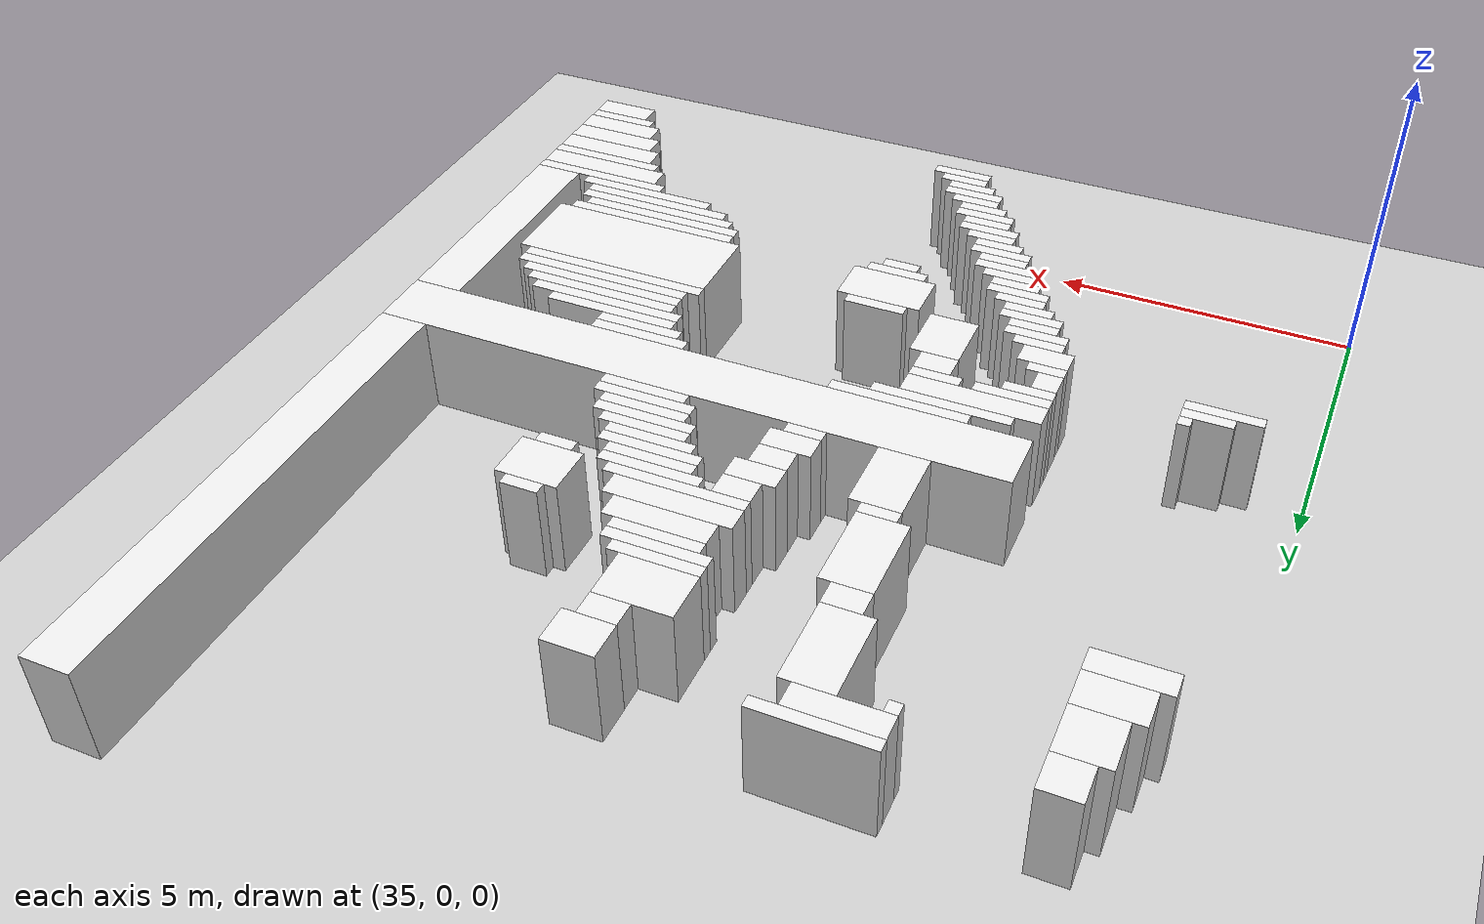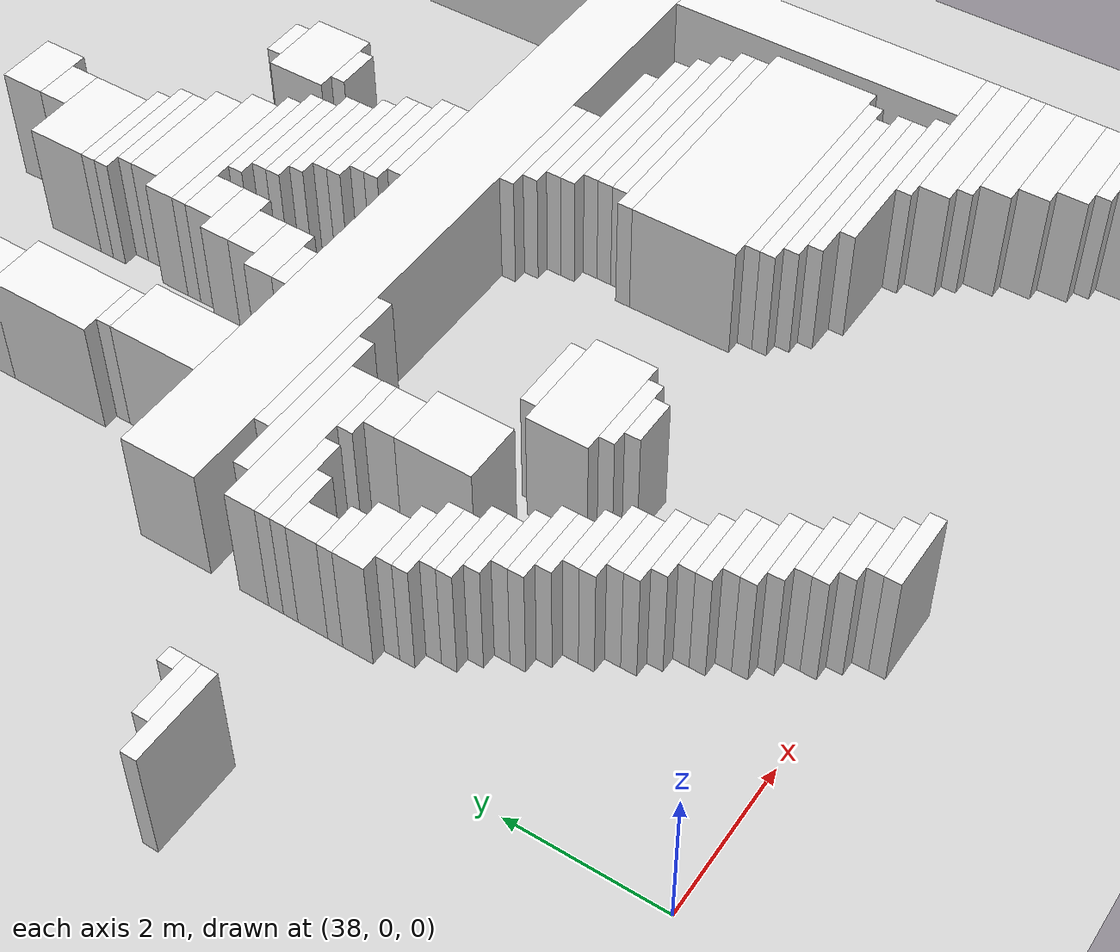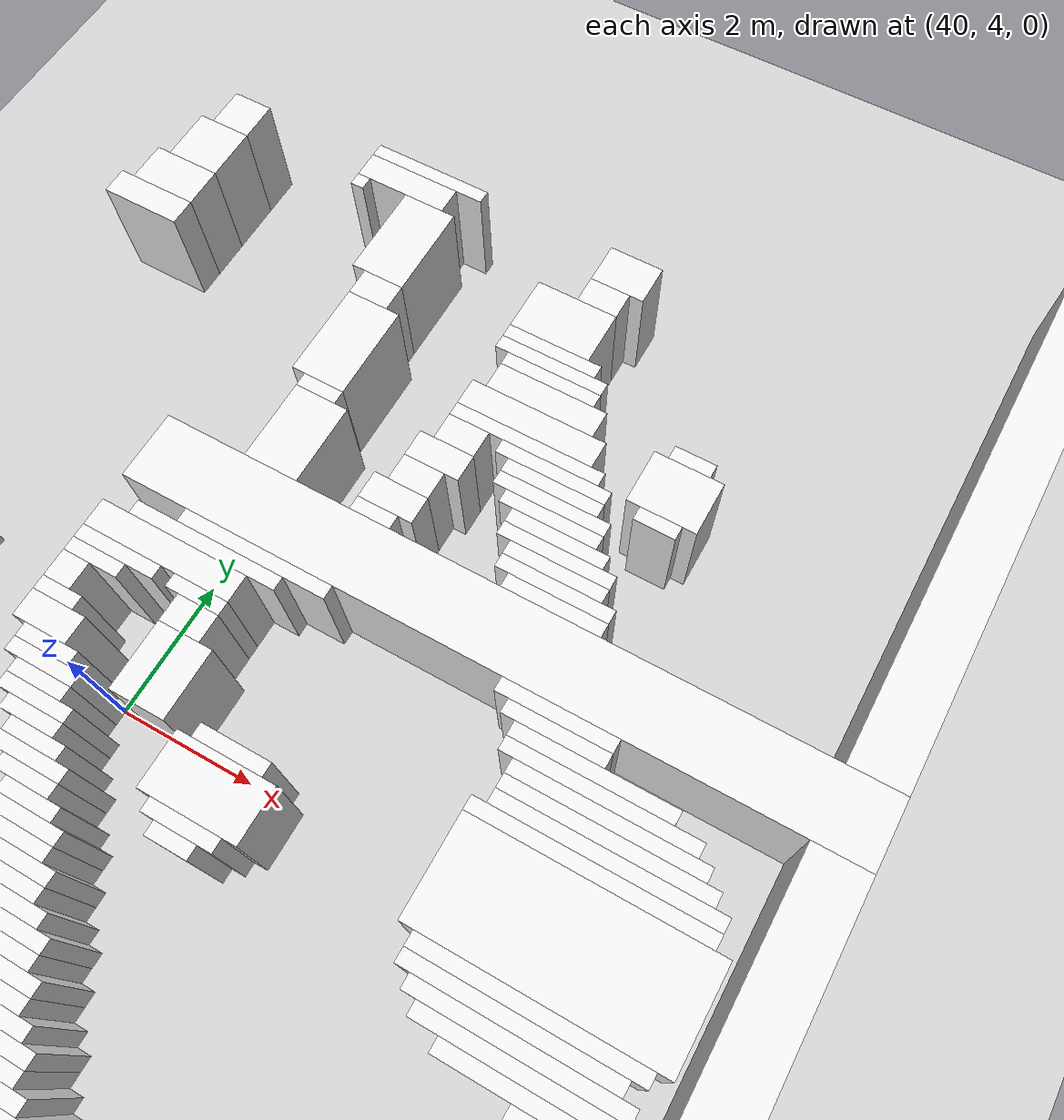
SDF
<sdf version="1.7">
 <world name="default">
  <model name="ground_plane">
   <static>1</static>
   <link name="link">
    <collision name="collision">
     <geometry><plane><normal>0 0 1</normal><size>120 120</size></plane></geometry>
    </collision>
    <visual name="visual">
     <geometry><plane><normal>0 0 1</normal><size>120 120</size></plane></geometry>
     <material>
      <script><uri>file://media/materials/scripts/gazebo.material</uri><name>Gazebo/Grey</name></script>
     </material>
    </visual>
   </link>
  </model>
  <model name="random_complex_01_model">
   <static>1</static>
   <link name="obs_1289">
    <pose>39.7000 12.5000 0.8000 0 0 0</pose>
    <collision name="obs_1289_col"><geometry><box><size>1.8000 0.2000 1.6000</size></box></geometry></collision>
    <visual name="obs_1289_vis">
     <geometry><box><size>1.8000 0.2000 1.6000</size></box></geometry>
     <material>
      <script><uri>file://media/materials/scripts/gazebo.material</uri><name>Gazebo/White</name></script>
     </material>
    </visual>
   </link>
   <link name="obs_1299">
    <pose>43.0000 12.3000 0.8000 0 0 0</pose>
    <collision name="obs_1299_col"><geometry><box><size>0.8000 0.6000 1.6000</size></box></geometry></collision>
    <visual name="obs_1299_vis">
     <geometry><box><size>0.8000 0.6000 1.6000</size></box></geometry>
     <material>
      <script><uri>file://media/materials/scripts/gazebo.material</uri><name>Gazebo/White</name></script>
     </material>
    </visual>
   </link>
   <link name="obs_1301">
    <pose>39.5000 12.2000 0.8000 0 0 0</pose>
    <collision name="obs_1301_col"><geometry><box><size>1.4000 0.4000 1.6000</size></box></geometry></collision>
    <visual name="obs_1301_vis">
     <geometry><box><size>1.4000 0.4000 1.6000</size></box></geometry>
     <material>
      <script><uri>file://media/materials/scripts/gazebo.material</uri><name>Gazebo/White</name></script>
     </material>
    </visual>
   </link>
   <link name="obs_1307">
    <pose>36.7000 12.1000 0.8000 0 0 0</pose>
    <collision name="obs_1307_col"><geometry><box><size>0.6000 0.6000 1.6000</size></box></geometry></collision>
    <visual name="obs_1307_vis">
     <geometry><box><size>0.6000 0.6000 1.6000</size></box></geometry>
     <material>
      <script><uri>file://media/materials/scripts/gazebo.material</uri><name>Gazebo/White</name></script>
     </material>
    </visual>
   </link>
   <link name="obs_1315">
    <pose>38.9000 11.9000 0.8000 0 0 0</pose>
    <collision name="obs_1315_col"><geometry><box><size>0.2000 0.2000 1.6000</size></box></geometry></collision>
    <visual name="obs_1315_vis">
     <geometry><box><size>0.2000 0.2000 1.6000</size></box></geometry>
     <material>
      <script><uri>file://media/materials/scripts/gazebo.material</uri><name>Gazebo/White</name></script>
     </material>
    </visual>
   </link>
   <link name="obs_1316">
    <pose>42.9000 11.8000 0.8000 0 0 0</pose>
    <collision name="obs_1316_col"><geometry><box><size>0.6000 0.4000 1.6000</size></box></geometry></collision>
    <visual name="obs_1316_vis">
     <geometry><box><size>0.6000 0.4000 1.6000</size></box></geometry>
     <material>
      <script><uri>file://media/materials/scripts/gazebo.material</uri><name>Gazebo/White</name></script>
     </material>
    </visual>
   </link>
   <link name="obs_1333">
    <pose>36.6000 11.4000 0.8000 0 0 0</pose>
    <collision name="obs_1333_col"><geometry><box><size>0.8000 0.8000 1.6000</size></box></geometry></collision>
    <visual name="obs_1333_vis">
     <geometry><box><size>0.8000 0.8000 1.6000</size></box></geometry>
     <material>
      <script><uri>file://media/materials/scripts/gazebo.material</uri><name>Gazebo/White</name></script>
     </material>
    </visual>
   </link>
   <link name="obs_1338">
    <pose>42.6000 11.2000 0.8000 0 0 0</pose>
    <collision name="obs_1338_col"><geometry><box><size>1.2000 0.8000 1.6000</size></box></geometry></collision>
    <visual name="obs_1338_vis">
     <geometry><box><size>1.2000 0.8000 1.6000</size></box></geometry>
     <material>
      <script><uri>file://media/materials/scripts/gazebo.material</uri><name>Gazebo/White</name></script>
     </material>
    </visual>
   </link>
   <link name="obs_1344">
    <pose>40.0000 11.3000 0.8000 0 0 0</pose>
    <collision name="obs_1344_col"><geometry><box><size>0.8000 1.4000 1.6000</size></box></geometry></collision>
    <visual name="obs_1344_vis">
     <geometry><box><size>0.8000 1.4000 1.6000</size></box></geometry>
     <material>
      <script><uri>file://media/materials/scripts/gazebo.material</uri><name>Gazebo/White</name></script>
     </material>
    </visual>
   </link>
   <link name="obs_1350">
    <pose>42.7000 10.7000 0.8000 0 0 0</pose>
    <collision name="obs_1350_col"><geometry><box><size>1.4000 0.2000 1.6000</size></box></geometry></collision>
    <visual name="obs_1350_vis">
     <geometry><box><size>1.4000 0.2000 1.6000</size></box></geometry>
     <material>
      <script><uri>file://media/materials/scripts/gazebo.material</uri><name>Gazebo/White</name></script>
     </material>
    </visual>
   </link>
   <link name="obs_1352">
    <pose>36.5000 10.7000 0.8000 0 0 0</pose>
    <collision name="obs_1352_col"><geometry><box><size>1.0000 0.6000 1.6000</size></box></geometry></collision>
    <visual name="obs_1352_vis">
     <geometry><box><size>1.0000 0.6000 1.6000</size></box></geometry>
     <material>
      <script><uri>file://media/materials/scripts/gazebo.material</uri><name>Gazebo/White</name></script>
     </material>
    </visual>
   </link>
   <link name="obs_1354">
    <pose>42.8000 10.5000 0.8000 0 0 0</pose>
    <collision name="obs_1354_col"><geometry><box><size>1.6000 0.2000 1.6000</size></box></geometry></collision>
    <visual name="obs_1354_vis">
     <geometry><box><size>1.6000 0.2000 1.6000</size></box></geometry>
     <material>
      <script><uri>file://media/materials/scripts/gazebo.material</uri><name>Gazebo/White</name></script>
     </material>
    </visual>
   </link>
   <link name="obs_1359">
    <pose>40.1000 10.4000 0.8000 0 0 0</pose>
    <collision name="obs_1359_col"><geometry><box><size>0.6000 0.4000 1.6000</size></box></geometry></collision>
    <visual name="obs_1359_vis">
     <geometry><box><size>0.6000 0.4000 1.6000</size></box></geometry>
     <material>
      <script><uri>file://media/materials/scripts/gazebo.material</uri><name>Gazebo/White</name></script>
     </material>
    </visual>
   </link>
   <link name="obs_1361">
    <pose>42.9000 10.3000 0.8000 0 0 0</pose>
    <collision name="obs_1361_col"><geometry><box><size>1.4000 0.2000 1.6000</size></box></geometry></collision>
    <visual name="obs_1361_vis">
     <geometry><box><size>1.4000 0.2000 1.6000</size></box></geometry>
     <material>
      <script><uri>file://media/materials/scripts/gazebo.material</uri><name>Gazebo/White</name></script>
     </material>
    </visual>
   </link>
   <link name="obs_1365">
    <pose>36.4000 10.2000 0.8000 0 0 0</pose>
    <collision name="obs_1365_col"><geometry><box><size>1.2000 0.4000 1.6000</size></box></geometry></collision>
    <visual name="obs_1365_vis">
     <geometry><box><size>1.2000 0.4000 1.6000</size></box></geometry>
     <material>
      <script><uri>file://media/materials/scripts/gazebo.material</uri><name>Gazebo/White</name></script>
     </material>
    </visual>
   </link>
   <link name="obs_1370">
    <pose>45.1000 10.1000 0.8000 0 0 0</pose>
    <collision name="obs_1370_col"><geometry><box><size>0.6000 0.2000 1.6000</size></box></geometry></collision>
    <visual name="obs_1370_vis">
     <geometry><box><size>0.6000 0.2000 1.6000</size></box></geometry>
     <material>
      <script><uri>file://media/materials/scripts/gazebo.material</uri><name>Gazebo/White</name></script>
     </material>
    </visual>
   </link>
   <link name="obs_1372">
    <pose>43.0000 10.0000 0.8000 0 0 0</pose>
    <collision name="obs_1372_col"><geometry><box><size>1.6000 0.4000 1.6000</size></box></geometry></collision>
    <visual name="obs_1372_vis">
     <geometry><box><size>1.6000 0.4000 1.6000</size></box></geometry>
     <material>
      <script><uri>file://media/materials/scripts/gazebo.material</uri><name>Gazebo/White</name></script>
     </material>
    </visual>
   </link>
   <link name="obs_1388">
    <pose>43.0000 9.6000 0.8000 0 0 0</pose>
    <collision name="obs_1388_col"><geometry><box><size>2.0000 0.4000 1.6000</size></box></geometry></collision>
    <visual name="obs_1388_vis">
     <geometry><box><size>2.0000 0.4000 1.6000</size></box></geometry>
     <material>
      <script><uri>file://media/materials/scripts/gazebo.material</uri><name>Gazebo/White</name></script>
     </material>
    </visual>
   </link>
   <link name="obs_1394">
    <pose>45.1000 9.6000 0.8000 0 0 0</pose>
    <collision name="obs_1394_col"><geometry><box><size>1.0000 0.8000 1.6000</size></box></geometry></collision>
    <visual name="obs_1394_vis">
     <geometry><box><size>1.0000 0.8000 1.6000</size></box></geometry>
     <material>
      <script><uri>file://media/materials/scripts/gazebo.material</uri><name>Gazebo/White</name></script>
     </material>
    </visual>
   </link>
   <link name="obs_1399">
    <pose>43.1000 9.3000 0.8000 0 0 0</pose>
    <collision name="obs_1399_col"><geometry><box><size>2.2000 0.2000 1.6000</size></box></geometry></collision>
    <visual name="obs_1399_vis">
     <geometry><box><size>2.2000 0.2000 1.6000</size></box></geometry>
     <material>
      <script><uri>file://media/materials/scripts/gazebo.material</uri><name>Gazebo/White</name></script>
     </material>
    </visual>
   </link>
   <link name="obs_1406">
    <pose>43.6000 9.1000 0.8000 0 0 0</pose>
    <collision name="obs_1406_col"><geometry><box><size>1.6000 0.2000 1.6000</size></box></geometry></collision>
    <visual name="obs_1406_vis">
     <geometry><box><size>1.6000 0.2000 1.6000</size></box></geometry>
     <material>
      <script><uri>file://media/materials/scripts/gazebo.material</uri><name>Gazebo/White</name></script>
     </material>
    </visual>
   </link>
   <link name="obs_1407">
    <pose>45.1000 9.1000 0.8000 0 0 0</pose>
    <collision name="obs_1407_col"><geometry><box><size>0.6000 0.2000 1.6000</size></box></geometry></collision>
    <visual name="obs_1407_vis">
     <geometry><box><size>0.6000 0.2000 1.6000</size></box></geometry>
     <material>
      <script><uri>file://media/materials/scripts/gazebo.material</uri><name>Gazebo/White</name></script>
     </material>
    </visual>
   </link>
   <link name="obs_1409">
    <pose>40.2000 9.5000 0.8000 0 0 0</pose>
    <collision name="obs_1409_col"><geometry><box><size>0.8000 1.4000 1.6000</size></box></geometry></collision>
    <visual name="obs_1409_vis">
     <geometry><box><size>0.8000 1.4000 1.6000</size></box></geometry>
     <material>
      <script><uri>file://media/materials/scripts/gazebo.material</uri><name>Gazebo/White</name></script>
     </material>
    </visual>
   </link>
   <link name="obs_1412">
    <pose>42.3000 9.0000 0.8000 0 0 0</pose>
    <collision name="obs_1412_col"><geometry><box><size>0.6000 0.4000 1.6000</size></box></geometry></collision>
    <visual name="obs_1412_vis">
     <geometry><box><size>0.6000 0.4000 1.6000</size></box></geometry>
     <material>
      <script><uri>file://media/materials/scripts/gazebo.material</uri><name>Gazebo/White</name></script>
     </material>
    </visual>
   </link>
   <link name="obs_1420">
    <pose>43.7000 8.9000 0.8000 0 0 0</pose>
    <collision name="obs_1420_col"><geometry><box><size>1.4000 0.2000 1.6000</size></box></geometry></collision>
    <visual name="obs_1420_vis">
     <geometry><box><size>1.4000 0.2000 1.6000</size></box></geometry>
     <material>
      <script><uri>file://media/materials/scripts/gazebo.material</uri><name>Gazebo/White</name></script>
     </material>
    </visual>
   </link>
   <link name="obs_1426">
    <pose>40.3000 8.7000 0.8000 0 0 0</pose>
    <collision name="obs_1426_col"><geometry><box><size>0.6000 0.2000 1.6000</size></box></geometry></collision>
    <visual name="obs_1426_vis">
     <geometry><box><size>0.6000 0.2000 1.6000</size></box></geometry>
     <material>
      <script><uri>file://media/materials/scripts/gazebo.material</uri><name>Gazebo/White</name></script>
     </material>
    </visual>
   </link>
   <link name="obs_1427">
    <pose>43.8000 8.7000 0.8000 0 0 0</pose>
    <collision name="obs_1427_col"><geometry><box><size>1.6000 0.2000 1.6000</size></box></geometry></collision>
    <visual name="obs_1427_vis">
     <geometry><box><size>1.6000 0.2000 1.6000</size></box></geometry>
     <material>
      <script><uri>file://media/materials/scripts/gazebo.material</uri><name>Gazebo/White</name></script>
     </material>
    </visual>
   </link>
   <link name="obs_1428">
    <pose>42.2000 8.6000 0.8000 0 0 0</pose>
    <collision name="obs_1428_col"><geometry><box><size>0.8000 0.4000 1.6000</size></box></geometry></collision>
    <visual name="obs_1428_vis">
     <geometry><box><size>0.8000 0.4000 1.6000</size></box></geometry>
     <material>
      <script><uri>file://media/materials/scripts/gazebo.material</uri><name>Gazebo/White</name></script>
     </material>
    </visual>
   </link>
   <link name="obs_1434">
    <pose>43.9000 8.5000 0.8000 0 0 0</pose>
    <collision name="obs_1434_col"><geometry><box><size>1.4000 0.2000 1.6000</size></box></geometry></collision>
    <visual name="obs_1434_vis">
     <geometry><box><size>1.4000 0.2000 1.6000</size></box></geometry>
     <material>
      <script><uri>file://media/materials/scripts/gazebo.material</uri><name>Gazebo/White</name></script>
     </material>
    </visual>
   </link>
   <link name="obs_1442">
    <pose>44.1000 8.3000 0.8000 0 0 0</pose>
    <collision name="obs_1442_col"><geometry><box><size>1.4000 0.2000 1.6000</size></box></geometry></collision>
    <visual name="obs_1442_vis">
     <geometry><box><size>1.4000 0.2000 1.6000</size></box></geometry>
     <material>
      <script><uri>file://media/materials/scripts/gazebo.material</uri><name>Gazebo/White</name></script>
     </material>
    </visual>
   </link>
   <link name="obs_1445">
    <pose>42.1000 8.2000 0.8000 0 0 0</pose>
    <collision name="obs_1445_col"><geometry><box><size>0.6000 0.4000 1.6000</size></box></geometry></collision>
    <visual name="obs_1445_vis">
     <geometry><box><size>0.6000 0.4000 1.6000</size></box></geometry>
     <material>
      <script><uri>file://media/materials/scripts/gazebo.material</uri><name>Gazebo/White</name></script>
     </material>
    </visual>
   </link>
   <link name="obs_1451">
    <pose>44.2000 8.1000 0.8000 0 0 0</pose>
    <collision name="obs_1451_col"><geometry><box><size>1.6000 0.2000 1.6000</size></box></geometry></collision>
    <visual name="obs_1451_vis">
     <geometry><box><size>1.6000 0.2000 1.6000</size></box></geometry>
     <material>
      <script><uri>file://media/materials/scripts/gazebo.material</uri><name>Gazebo/White</name></script>
     </material>
    </visual>
   </link>
   <link name="obs_1457">
    <pose>44.3000 7.9000 0.8000 0 0 0</pose>
    <collision name="obs_1457_col"><geometry><box><size>1.4000 0.2000 1.6000</size></box></geometry></collision>
    <visual name="obs_1457_vis">
     <geometry><box><size>1.4000 0.2000 1.6000</size></box></geometry>
     <material>
      <script><uri>file://media/materials/scripts/gazebo.material</uri><name>Gazebo/White</name></script>
     </material>
    </visual>
   </link>
   <link name="obs_1461">
    <pose>42.0000 7.8000 0.8000 0 0 0</pose>
    <collision name="obs_1461_col"><geometry><box><size>0.8000 0.4000 1.6000</size></box></geometry></collision>
    <visual name="obs_1461_vis">
     <geometry><box><size>0.8000 0.4000 1.6000</size></box></geometry>
     <material>
      <script><uri>file://media/materials/scripts/gazebo.material</uri><name>Gazebo/White</name></script>
     </material>
    </visual>
   </link>
   <link name="obs_1465">
    <pose>44.4000 7.7000 0.8000 0 0 0</pose>
    <collision name="obs_1465_col"><geometry><box><size>1.6000 0.2000 1.6000</size></box></geometry></collision>
    <visual name="obs_1465_vis">
     <geometry><box><size>1.6000 0.2000 1.6000</size></box></geometry>
     <material>
      <script><uri>file://media/materials/scripts/gazebo.material</uri><name>Gazebo/White</name></script>
     </material>
    </visual>
   </link>
   <link name="obs_1466">
    <pose>48.8000 11.4000 0.8000 0 0 0</pose>
    <collision name="obs_1466_col"><geometry><box><size>0.8000 8.0000 1.6000</size></box></geometry></collision>
    <visual name="obs_1466_vis">
     <geometry><box><size>0.8000 8.0000 1.6000</size></box></geometry>
     <material>
      <script><uri>file://media/materials/scripts/gazebo.material</uri><name>Gazebo/White</name></script>
     </material>
    </visual>
   </link>
   <link name="obs_1467">
    <pose>40.4000 8.0000 0.8000 0 0 0</pose>
    <collision name="obs_1467_col"><geometry><box><size>0.8000 1.2000 1.6000</size></box></geometry></collision>
    <visual name="obs_1467_vis">
     <geometry><box><size>0.8000 1.2000 1.6000</size></box></geometry>
     <material>
      <script><uri>file://media/materials/scripts/gazebo.material</uri><name>Gazebo/White</name></script>
     </material>
    </visual>
   </link>
   <link name="obs_1474">
    <pose>41.9000 7.5000 0.8000 0 0 0</pose>
    <collision name="obs_1474_col"><geometry><box><size>0.6000 0.2000 1.6000</size></box></geometry></collision>
    <visual name="obs_1474_vis">
     <geometry><box><size>0.6000 0.2000 1.6000</size></box></geometry>
     <material>
      <script><uri>file://media/materials/scripts/gazebo.material</uri><name>Gazebo/White</name></script>
     </material>
    </visual>
   </link>
   <link name="obs_1475">
    <pose>44.5000 7.5000 0.8000 0 0 0</pose>
    <collision name="obs_1475_col"><geometry><box><size>1.4000 0.2000 1.6000</size></box></geometry></collision>
    <visual name="obs_1475_vis">
     <geometry><box><size>1.4000 0.2000 1.6000</size></box></geometry>
     <material>
      <script><uri>file://media/materials/scripts/gazebo.material</uri><name>Gazebo/White</name></script>
     </material>
    </visual>
   </link>
   <link name="obs_1509">
    <pose>44.0000 6.9000 0.8000 0 0 0</pose>
    <collision name="obs_1509_col"><geometry><box><size>10.4000 1.0000 1.6000</size></box></geometry></collision>
    <visual name="obs_1509_vis">
     <geometry><box><size>10.4000 1.0000 1.6000</size></box></geometry>
     <material>
      <script><uri>file://media/materials/scripts/gazebo.material</uri><name>Gazebo/White</name></script>
     </material>
    </visual>
   </link>
   <link name="obs_1525">
    <pose>40.9000 6.3000 0.8000 0 0 0</pose>
    <collision name="obs_1525_col"><geometry><box><size>2.2000 0.2000 1.6000</size></box></geometry></collision>
    <visual name="obs_1525_vis">
     <geometry><box><size>2.2000 0.2000 1.6000</size></box></geometry>
     <material>
      <script><uri>file://media/materials/scripts/gazebo.material</uri><name>Gazebo/White</name></script>
     </material>
    </visual>
   </link>
   <link name="obs_1526">
    <pose>45.2000 6.3000 0.8000 0 0 0</pose>
    <collision name="obs_1526_col"><geometry><box><size>1.6000 0.2000 1.6000</size></box></geometry></collision>
    <visual name="obs_1526_vis">
     <geometry><box><size>1.6000 0.2000 1.6000</size></box></geometry>
     <material>
      <script><uri>file://media/materials/scripts/gazebo.material</uri><name>Gazebo/White</name></script>
     </material>
    </visual>
   </link>
   <link name="obs_1533">
    <pose>40.3000 6.1000 0.8000 0 0 0</pose>
    <collision name="obs_1533_col"><geometry><box><size>2.2000 0.2000 1.6000</size></box></geometry></collision>
    <visual name="obs_1533_vis">
     <geometry><box><size>2.2000 0.2000 1.6000</size></box></geometry>
     <material>
      <script><uri>file://media/materials/scripts/gazebo.material</uri><name>Gazebo/White</name></script>
     </material>
    </visual>
   </link>
   <link name="obs_1534">
    <pose>45.3000 6.1000 0.8000 0 0 0</pose>
    <collision name="obs_1534_col"><geometry><box><size>1.4000 0.2000 1.6000</size></box></geometry></collision>
    <visual name="obs_1534_vis">
     <geometry><box><size>1.4000 0.2000 1.6000</size></box></geometry>
     <material>
      <script><uri>file://media/materials/scripts/gazebo.material</uri><name>Gazebo/White</name></script>
     </material>
    </visual>
   </link>
   <link name="obs_1541">
    <pose>45.9000 5.9000 0.8000 0 0 0</pose>
    <collision name="obs_1541_col"><geometry><box><size>2.2000 0.2000 1.6000</size></box></geometry></collision>
    <visual name="obs_1541_vis">
     <geometry><box><size>2.2000 0.2000 1.6000</size></box></geometry>
     <material>
      <script><uri>file://media/materials/scripts/gazebo.material</uri><name>Gazebo/White</name></script>
     </material>
    </visual>
   </link>
   <link name="obs_1544">
    <pose>39.9000 5.8000 0.8000 0 0 0</pose>
    <collision name="obs_1544_col"><geometry><box><size>2.2000 0.4000 1.6000</size></box></geometry></collision>
    <visual name="obs_1544_vis">
     <geometry><box><size>2.2000 0.4000 1.6000</size></box></geometry>
     <material>
      <script><uri>file://media/materials/scripts/gazebo.material</uri><name>Gazebo/White</name></script>
     </material>
    </visual>
   </link>
   <link name="obs_1549">
    <pose>46.1000 5.7000 0.8000 0 0 0</pose>
    <collision name="obs_1549_col"><geometry><box><size>2.6000 0.2000 1.6000</size></box></geometry></collision>
    <visual name="obs_1549_vis">
     <geometry><box><size>2.6000 0.2000 1.6000</size></box></geometry>
     <material>
      <script><uri>file://media/materials/scripts/gazebo.material</uri><name>Gazebo/White</name></script>
     </material>
    </visual>
   </link>
   <link name="obs_1557">
    <pose>39.4000 5.5000 0.8000 0 0 0</pose>
    <collision name="obs_1557_col"><geometry><box><size>1.2000 0.2000 1.6000</size></box></geometry></collision>
    <visual name="obs_1557_vis">
     <geometry><box><size>1.2000 0.2000 1.6000</size></box></geometry>
     <material>
      <script><uri>file://media/materials/scripts/gazebo.material</uri><name>Gazebo/White</name></script>
     </material>
    </visual>
   </link>
   <link name="obs_1558">
    <pose>40.6000 5.5000 0.8000 0 0 0</pose>
    <collision name="obs_1558_col"><geometry><box><size>0.8000 0.2000 1.6000</size></box></geometry></collision>
    <visual name="obs_1558_vis">
     <geometry><box><size>0.8000 0.2000 1.6000</size></box></geometry>
     <material>
      <script><uri>file://media/materials/scripts/gazebo.material</uri><name>Gazebo/White</name></script>
     </material>
    </visual>
   </link>
   <link name="obs_1559">
    <pose>46.3000 5.5000 0.8000 0 0 0</pose>
    <collision name="obs_1559_col"><geometry><box><size>2.6000 0.2000 1.6000</size></box></geometry></collision>
    <visual name="obs_1559_vis">
     <geometry><box><size>2.6000 0.2000 1.6000</size></box></geometry>
     <material>
      <script><uri>file://media/materials/scripts/gazebo.material</uri><name>Gazebo/White</name></script>
     </material>
    </visual>
   </link>
   <link name="obs_1567">
    <pose>39.2000 5.3000 0.8000 0 0 0</pose>
    <collision name="obs_1567_col"><geometry><box><size>0.8000 0.2000 1.6000</size></box></geometry></collision>
    <visual name="obs_1567_vis">
     <geometry><box><size>0.8000 0.2000 1.6000</size></box></geometry>
     <material>
      <script><uri>file://media/materials/scripts/gazebo.material</uri><name>Gazebo/White</name></script>
     </material>
    </visual>
   </link>
   <link name="obs_1568">
    <pose>46.4000 5.3000 0.8000 0 0 0</pose>
    <collision name="obs_1568_col"><geometry><box><size>2.8000 0.2000 1.6000</size></box></geometry></collision>
    <visual name="obs_1568_vis">
     <geometry><box><size>2.8000 0.2000 1.6000</size></box></geometry>
     <material>
      <script><uri>file://media/materials/scripts/gazebo.material</uri><name>Gazebo/White</name></script>
     </material>
    </visual>
   </link>
   <link name="obs_1571">
    <pose>40.7000 5.2000 0.8000 0 0 0</pose>
    <collision name="obs_1571_col"><geometry><box><size>0.6000 0.4000 1.6000</size></box></geometry></collision>
    <visual name="obs_1571_vis">
     <geometry><box><size>0.6000 0.4000 1.6000</size></box></geometry>
     <material>
      <script><uri>file://media/materials/scripts/gazebo.material</uri><name>Gazebo/White</name></script>
     </material>
    </visual>
   </link>
   <link name="obs_1578">
    <pose>36.9000 5.1000 0.8000 0 0 0</pose>
    <collision name="obs_1578_col"><geometry><box><size>0.2000 0.2000 1.6000</size></box></geometry></collision>
    <visual name="obs_1578_vis">
     <geometry><box><size>0.2000 0.2000 1.6000</size></box></geometry>
     <material>
      <script><uri>file://media/materials/scripts/gazebo.material</uri><name>Gazebo/White</name></script>
     </material>
    </visual>
   </link>
   <link name="obs_1579">
    <pose>46.5000 5.1000 0.8000 0 0 0</pose>
    <collision name="obs_1579_col"><geometry><box><size>3.0000 0.2000 1.6000</size></box></geometry></collision>
    <visual name="obs_1579_vis">
     <geometry><box><size>3.0000 0.2000 1.6000</size></box></geometry>
     <material>
      <script><uri>file://media/materials/scripts/gazebo.material</uri><name>Gazebo/White</name></script>
     </material>
    </visual>
   </link>
   <link name="obs_1580">
    <pose>39.0000 5.0000 0.8000 0 0 0</pose>
    <collision name="obs_1580_col"><geometry><box><size>0.4000 0.4000 1.6000</size></box></geometry></collision>
    <visual name="obs_1580_vis">
     <geometry><box><size>0.4000 0.4000 1.6000</size></box></geometry>
     <material>
      <script><uri>file://media/materials/scripts/gazebo.material</uri><name>Gazebo/White</name></script>
     </material>
    </visual>
   </link>
   <link name="obs_1588">
    <pose>36.6000 4.9000 0.8000 0 0 0</pose>
    <collision name="obs_1588_col"><geometry><box><size>0.8000 0.2000 1.6000</size></box></geometry></collision>
    <visual name="obs_1588_vis">
     <geometry><box><size>0.8000 0.2000 1.6000</size></box></geometry>
     <material>
      <script><uri>file://media/materials/scripts/gazebo.material</uri><name>Gazebo/White</name></script>
     </material>
    </visual>
   </link>
   <link name="obs_1589">
    <pose>46.4000 4.9000 0.8000 0 0 0</pose>
    <collision name="obs_1589_col"><geometry><box><size>3.2000 0.2000 1.6000</size></box></geometry></collision>
    <visual name="obs_1589_vis">
     <geometry><box><size>3.2000 0.2000 1.6000</size></box></geometry>
     <material>
      <script><uri>file://media/materials/scripts/gazebo.material</uri><name>Gazebo/White</name></script>
     </material>
    </visual>
   </link>
   <link name="obs_1599">
    <pose>36.4000 4.7000 0.8000 0 0 0</pose>
    <collision name="obs_1599_col"><geometry><box><size>1.2000 0.2000 1.6000</size></box></geometry></collision>
    <visual name="obs_1599_vis">
     <geometry><box><size>1.2000 0.2000 1.6000</size></box></geometry>
     <material>
      <script><uri>file://media/materials/scripts/gazebo.material</uri><name>Gazebo/White</name></script>
     </material>
    </visual>
   </link>
   <link name="obs_1600">
    <pose>39.1000 4.7000 0.8000 0 0 0</pose>
    <collision name="obs_1600_col"><geometry><box><size>0.6000 0.2000 1.6000</size></box></geometry></collision>
    <visual name="obs_1600_vis">
     <geometry><box><size>0.6000 0.2000 1.6000</size></box></geometry>
     <material>
      <script><uri>file://media/materials/scripts/gazebo.material</uri><name>Gazebo/White</name></script>
     </material>
    </visual>
   </link>
   <link name="obs_1611">
    <pose>39.2000 4.4000 0.8000 0 0 0</pose>
    <collision name="obs_1611_col"><geometry><box><size>0.8000 0.4000 1.6000</size></box></geometry></collision>
    <visual name="obs_1611_vis">
     <geometry><box><size>0.8000 0.4000 1.6000</size></box></geometry>
     <material>
      <script><uri>file://media/materials/scripts/gazebo.material</uri><name>Gazebo/White</name></script>
     </material>
    </visual>
   </link>
   <link name="obs_1620">
    <pose>40.8000 4.5000 0.8000 0 0 0</pose>
    <collision name="obs_1620_col"><geometry><box><size>0.8000 1.0000 1.6000</size></box></geometry></collision>
    <visual name="obs_1620_vis">
     <geometry><box><size>0.8000 1.0000 1.6000</size></box></geometry>
     <material>
      <script><uri>file://media/materials/scripts/gazebo.material</uri><name>Gazebo/White</name></script>
     </material>
    </visual>
   </link>
   <link name="obs_1631">
    <pose>39.4000 4.1000 0.8000 0 0 0</pose>
    <collision name="obs_1631_col"><geometry><box><size>0.8000 0.2000 1.6000</size></box></geometry></collision>
    <visual name="obs_1631_vis">
     <geometry><box><size>0.8000 0.2000 1.6000</size></box></geometry>
     <material>
      <script><uri>file://media/materials/scripts/gazebo.material</uri><name>Gazebo/White</name></script>
     </material>
    </visual>
   </link>
   <link name="obs_1632">
    <pose>42.1000 4.1000 0.8000 0 0 0</pose>
    <collision name="obs_1632_col"><geometry><box><size>1.0000 0.2000 1.6000</size></box></geometry></collision>
    <visual name="obs_1632_vis">
     <geometry><box><size>1.0000 0.2000 1.6000</size></box></geometry>
     <material>
      <script><uri>file://media/materials/scripts/gazebo.material</uri><name>Gazebo/White</name></script>
     </material>
    </visual>
   </link>
   <link name="obs_1647">
    <pose>39.5000 3.9000 0.8000 0 0 0</pose>
    <collision name="obs_1647_col"><geometry><box><size>1.0000 0.2000 1.6000</size></box></geometry></collision>
    <visual name="obs_1647_vis">
     <geometry><box><size>1.0000 0.2000 1.6000</size></box></geometry>
     <material>
      <script><uri>file://media/materials/scripts/gazebo.material</uri><name>Gazebo/White</name></script>
     </material>
    </visual>
   </link>
   <link name="obs_1659">
    <pose>39.6000 3.7000 0.8000 0 0 0</pose>
    <collision name="obs_1659_col"><geometry><box><size>0.8000 0.2000 1.6000</size></box></geometry></collision>
    <visual name="obs_1659_vis">
     <geometry><box><size>0.8000 0.2000 1.6000</size></box></geometry>
     <material>
      <script><uri>file://media/materials/scripts/gazebo.material</uri><name>Gazebo/White</name></script>
     </material>
    </visual>
   </link>
   <link name="obs_1661">
    <pose>46.5000 4.1000 0.8000 0 0 0</pose>
    <collision name="obs_1661_col"><geometry><box><size>3.4000 1.4000 1.6000</size></box></geometry></collision>
    <visual name="obs_1661_vis">
     <geometry><box><size>3.4000 1.4000 1.6000</size></box></geometry>
     <material>
      <script><uri>file://media/materials/scripts/gazebo.material</uri><name>Gazebo/White</name></script>
     </material>
    </visual>
   </link>
   <link name="obs_1675">
    <pose>39.7000 3.5000 0.8000 0 0 0</pose>
    <collision name="obs_1675_col"><geometry><box><size>1.0000 0.2000 1.6000</size></box></geometry></collision>
    <visual name="obs_1675_vis">
     <geometry><box><size>1.0000 0.2000 1.6000</size></box></geometry>
     <material>
      <script><uri>file://media/materials/scripts/gazebo.material</uri><name>Gazebo/White</name></script>
     </material>
    </visual>
   </link>
   <link name="obs_1676">
    <pose>42.1000 3.6000 0.8000 0 0 0</pose>
    <collision name="obs_1676_col"><geometry><box><size>1.4000 0.8000 1.6000</size></box></geometry></collision>
    <visual name="obs_1676_vis">
     <geometry><box><size>1.4000 0.8000 1.6000</size></box></geometry>
     <material>
      <script><uri>file://media/materials/scripts/gazebo.material</uri><name>Gazebo/White</name></script>
     </material>
    </visual>
   </link>
   <link name="obs_1686">
    <pose>39.8000 3.3000 0.8000 0 0 0</pose>
    <collision name="obs_1686_col"><geometry><box><size>0.8000 0.2000 1.6000</size></box></geometry></collision>
    <visual name="obs_1686_vis">
     <geometry><box><size>0.8000 0.2000 1.6000</size></box></geometry>
     <material>
      <script><uri>file://media/materials/scripts/gazebo.material</uri><name>Gazebo/White</name></script>
     </material>
    </visual>
   </link>
   <link name="obs_1687">
    <pose>46.5000 3.3000 0.8000 0 0 0</pose>
    <collision name="obs_1687_col"><geometry><box><size>3.0000 0.2000 1.6000</size></box></geometry></collision>
    <visual name="obs_1687_vis">
     <geometry><box><size>3.0000 0.2000 1.6000</size></box></geometry>
     <material>
      <script><uri>file://media/materials/scripts/gazebo.material</uri><name>Gazebo/White</name></script>
     </material>
    </visual>
   </link>
   <link name="obs_1696">
    <pose>40.0000 3.1000 0.8000 0 0 0</pose>
    <collision name="obs_1696_col"><geometry><box><size>0.8000 0.2000 1.6000</size></box></geometry></collision>
    <visual name="obs_1696_vis">
     <geometry><box><size>0.8000 0.2000 1.6000</size></box></geometry>
     <material>
      <script><uri>file://media/materials/scripts/gazebo.material</uri><name>Gazebo/White</name></script>
     </material>
    </visual>
   </link>
   <link name="obs_1697">
    <pose>42.1000 3.1000 0.8000 0 0 0</pose>
    <collision name="obs_1697_col"><geometry><box><size>1.0000 0.2000 1.6000</size></box></geometry></collision>
    <visual name="obs_1697_vis">
     <geometry><box><size>1.0000 0.2000 1.6000</size></box></geometry>
     <material>
      <script><uri>file://media/materials/scripts/gazebo.material</uri><name>Gazebo/White</name></script>
     </material>
    </visual>
   </link>
   <link name="obs_1698">
    <pose>46.4000 3.1000 0.8000 0 0 0</pose>
    <collision name="obs_1698_col"><geometry><box><size>2.8000 0.2000 1.6000</size></box></geometry></collision>
    <visual name="obs_1698_vis">
     <geometry><box><size>2.8000 0.2000 1.6000</size></box></geometry>
     <material>
      <script><uri>file://media/materials/scripts/gazebo.material</uri><name>Gazebo/White</name></script>
     </material>
    </visual>
   </link>
   <link name="obs_1708">
    <pose>40.1000 2.9000 0.8000 0 0 0</pose>
    <collision name="obs_1708_col"><geometry><box><size>1.0000 0.2000 1.6000</size></box></geometry></collision>
    <visual name="obs_1708_vis">
     <geometry><box><size>1.0000 0.2000 1.6000</size></box></geometry>
     <material>
      <script><uri>file://media/materials/scripts/gazebo.material</uri><name>Gazebo/White</name></script>
     </material>
    </visual>
   </link>
   <link name="obs_1709">
    <pose>42.1000 2.9000 0.8000 0 0 0</pose>
    <collision name="obs_1709_col"><geometry><box><size>0.6000 0.2000 1.6000</size></box></geometry></collision>
    <visual name="obs_1709_vis">
     <geometry><box><size>0.6000 0.2000 1.6000</size></box></geometry>
     <material>
      <script><uri>file://media/materials/scripts/gazebo.material</uri><name>Gazebo/White</name></script>
     </material>
    </visual>
   </link>
   <link name="obs_1710">
    <pose>46.6000 2.9000 0.8000 0 0 0</pose>
    <collision name="obs_1710_col"><geometry><box><size>2.8000 0.2000 1.6000</size></box></geometry></collision>
    <visual name="obs_1710_vis">
     <geometry><box><size>2.8000 0.2000 1.6000</size></box></geometry>
     <material>
      <script><uri>file://media/materials/scripts/gazebo.material</uri><name>Gazebo/White</name></script>
     </material>
    </visual>
   </link>
   <link name="obs_1719">
    <pose>40.2000 2.7000 0.8000 0 0 0</pose>
    <collision name="obs_1719_col"><geometry><box><size>0.8000 0.2000 1.6000</size></box></geometry></collision>
    <visual name="obs_1719_vis">
     <geometry><box><size>0.8000 0.2000 1.6000</size></box></geometry>
     <material>
      <script><uri>file://media/materials/scripts/gazebo.material</uri><name>Gazebo/White</name></script>
     </material>
    </visual>
   </link>
   <link name="obs_1720">
    <pose>46.7000 2.7000 0.8000 0 0 0</pose>
    <collision name="obs_1720_col"><geometry><box><size>2.6000 0.2000 1.6000</size></box></geometry></collision>
    <visual name="obs_1720_vis">
     <geometry><box><size>2.6000 0.2000 1.6000</size></box></geometry>
     <material>
      <script><uri>file://media/materials/scripts/gazebo.material</uri><name>Gazebo/White</name></script>
     </material>
    </visual>
   </link>
   <link name="obs_1721">
    <pose>48.8000 4.4000 0.8000 0 0 0</pose>
    <collision name="obs_1721_col"><geometry><box><size>0.8000 4.0000 1.6000</size></box></geometry></collision>
    <visual name="obs_1721_vis">
     <geometry><box><size>0.8000 4.0000 1.6000</size></box></geometry>
     <material>
      <script><uri>file://media/materials/scripts/gazebo.material</uri><name>Gazebo/White</name></script>
     </material>
    </visual>
   </link>
   <link name="obs_1730">
    <pose>40.4000 2.5000 0.8000 0 0 0</pose>
    <collision name="obs_1730_col"><geometry><box><size>0.8000 0.2000 1.6000</size></box></geometry></collision>
    <visual name="obs_1730_vis">
     <geometry><box><size>0.8000 0.2000 1.6000</size></box></geometry>
     <material>
      <script><uri>file://media/materials/scripts/gazebo.material</uri><name>Gazebo/White</name></script>
     </material>
    </visual>
   </link>
   <link name="obs_1731">
    <pose>47.0000 2.5000 0.8000 0 0 0</pose>
    <collision name="obs_1731_col"><geometry><box><size>2.4000 0.2000 1.6000</size></box></geometry></collision>
    <visual name="obs_1731_vis">
     <geometry><box><size>2.4000 0.2000 1.6000</size></box></geometry>
     <material>
      <script><uri>file://media/materials/scripts/gazebo.material</uri><name>Gazebo/White</name></script>
     </material>
    </visual>
   </link>
   <link name="obs_1738">
    <pose>40.5000 2.3000 0.8000 0 0 0</pose>
    <collision name="obs_1738_col"><geometry><box><size>1.0000 0.2000 1.6000</size></box></geometry></collision>
    <visual name="obs_1738_vis">
     <geometry><box><size>1.0000 0.2000 1.6000</size></box></geometry>
     <material>
      <script><uri>file://media/materials/scripts/gazebo.material</uri><name>Gazebo/White</name></script>
     </material>
    </visual>
   </link>
   <link name="obs_1739">
    <pose>48.0000 2.3000 0.8000 0 0 0</pose>
    <collision name="obs_1739_col"><geometry><box><size>2.4000 0.2000 1.6000</size></box></geometry></collision>
    <visual name="obs_1739_vis">
     <geometry><box><size>2.4000 0.2000 1.6000</size></box></geometry>
     <material>
      <script><uri>file://media/materials/scripts/gazebo.material</uri><name>Gazebo/White</name></script>
     </material>
    </visual>
   </link>
   <link name="obs_1748">
    <pose>40.6000 2.1000 0.8000 0 0 0</pose>
    <collision name="obs_1748_col"><geometry><box><size>0.8000 0.2000 1.6000</size></box></geometry></collision>
    <visual name="obs_1748_vis">
     <geometry><box><size>0.8000 0.2000 1.6000</size></box></geometry>
     <material>
      <script><uri>file://media/materials/scripts/gazebo.material</uri><name>Gazebo/White</name></script>
     </material>
    </visual>
   </link>
   <link name="obs_1754">
    <pose>48.1000 2.0000 0.8000 0 0 0</pose>
    <collision name="obs_1754_col"><geometry><box><size>2.2000 0.4000 1.6000</size></box></geometry></collision>
    <visual name="obs_1754_vis">
     <geometry><box><size>2.2000 0.4000 1.6000</size></box></geometry>
     <material>
      <script><uri>file://media/materials/scripts/gazebo.material</uri><name>Gazebo/White</name></script>
     </material>
    </visual>
   </link>
   <link name="obs_1760">
    <pose>40.7000 1.9000 0.8000 0 0 0</pose>
    <collision name="obs_1760_col"><geometry><box><size>1.0000 0.2000 1.6000</size></box></geometry></collision>
    <visual name="obs_1760_vis">
     <geometry><box><size>1.0000 0.2000 1.6000</size></box></geometry>
     <material>
      <script><uri>file://media/materials/scripts/gazebo.material</uri><name>Gazebo/White</name></script>
     </material>
    </visual>
   </link>
   <link name="obs_1771">
    <pose>40.8000 1.7000 0.8000 0 0 0</pose>
    <collision name="obs_1771_col"><geometry><box><size>0.8000 0.2000 1.6000</size></box></geometry></collision>
    <visual name="obs_1771_vis">
     <geometry><box><size>0.8000 0.2000 1.6000</size></box></geometry>
     <material>
      <script><uri>file://media/materials/scripts/gazebo.material</uri><name>Gazebo/White</name></script>
     </material>
    </visual>
   </link>
   <link name="obs_1772">
    <pose>48.2000 1.7000 0.8000 0 0 0</pose>
    <collision name="obs_1772_col"><geometry><box><size>2.0000 0.2000 1.6000</size></box></geometry></collision>
    <visual name="obs_1772_vis">
     <geometry><box><size>2.0000 0.2000 1.6000</size></box></geometry>
     <material>
      <script><uri>file://media/materials/scripts/gazebo.material</uri><name>Gazebo/White</name></script>
     </material>
    </visual>
   </link>
   <link name="obs_1782">
    <pose>41.0000 1.5000 0.8000 0 0 0</pose>
    <collision name="obs_1782_col"><geometry><box><size>0.8000 0.2000 1.6000</size></box></geometry></collision>
    <visual name="obs_1782_vis">
     <geometry><box><size>0.8000 0.2000 1.6000</size></box></geometry>
     <material>
      <script><uri>file://media/materials/scripts/gazebo.material</uri><name>Gazebo/White</name></script>
     </material>
    </visual>
   </link>
   <link name="obs_1784">
    <pose>48.3000 1.4000 0.8000 0 0 0</pose>
    <collision name="obs_1784_col"><geometry><box><size>1.8000 0.4000 1.6000</size></box></geometry></collision>
    <visual name="obs_1784_vis">
     <geometry><box><size>1.8000 0.4000 1.6000</size></box></geometry>
     <material>
      <script><uri>file://media/materials/scripts/gazebo.material</uri><name>Gazebo/White</name></script>
     </material>
    </visual>
   </link>
   <link name="obs_1791">
    <pose>41.1000 1.3000 0.8000 0 0 0</pose>
    <collision name="obs_1791_col"><geometry><box><size>1.0000 0.2000 1.6000</size></box></geometry></collision>
    <visual name="obs_1791_vis">
     <geometry><box><size>1.0000 0.2000 1.6000</size></box></geometry>
     <material>
      <script><uri>file://media/materials/scripts/gazebo.material</uri><name>Gazebo/White</name></script>
     </material>
    </visual>
   </link>
   <link name="obs_1800">
    <pose>41.2000 1.1000 0.8000 0 0 0</pose>
    <collision name="obs_1800_col"><geometry><box><size>0.8000 0.2000 1.6000</size></box></geometry></collision>
    <visual name="obs_1800_vis">
     <geometry><box><size>0.8000 0.2000 1.6000</size></box></geometry>
     <material>
      <script><uri>file://media/materials/scripts/gazebo.material</uri><name>Gazebo/White</name></script>
     </material>
    </visual>
   </link>
   <link name="obs_1801">
    <pose>48.4000 1.0000 0.8000 0 0 0</pose>
    <collision name="obs_1801_col"><geometry><box><size>1.6000 0.4000 1.6000</size></box></geometry></collision>
    <visual name="obs_1801_vis">
     <geometry><box><size>1.6000 0.4000 1.6000</size></box></geometry>
     <material>
      <script><uri>file://media/materials/scripts/gazebo.material</uri><name>Gazebo/White</name></script>
     </material>
    </visual>
   </link>
   <link name="obs_1810">
    <pose>41.3000 0.9000 0.8000 0 0 0</pose>
    <collision name="obs_1810_col"><geometry><box><size>1.0000 0.2000 1.6000</size></box></geometry></collision>
    <visual name="obs_1810_vis">
     <geometry><box><size>1.0000 0.2000 1.6000</size></box></geometry>
     <material>
      <script><uri>file://media/materials/scripts/gazebo.material</uri><name>Gazebo/White</name></script>
     </material>
    </visual>
   </link>
   <link name="obs_1819">
    <pose>41.4000 0.7000 0.8000 0 0 0</pose>
    <collision name="obs_1819_col"><geometry><box><size>0.8000 0.2000 1.6000</size></box></geometry></collision>
    <visual name="obs_1819_vis">
     <geometry><box><size>0.8000 0.2000 1.6000</size></box></geometry>
     <material>
      <script><uri>file://media/materials/scripts/gazebo.material</uri><name>Gazebo/White</name></script>
     </material>
    </visual>
   </link>
   <link name="obs_1821">
    <pose>48.5000 0.6000 0.8000 0 0 0</pose>
    <collision name="obs_1821_col"><geometry><box><size>1.4000 0.4000 1.6000</size></box></geometry></collision>
    <visual name="obs_1821_vis">
     <geometry><box><size>1.4000 0.4000 1.6000</size></box></geometry>
     <material>
      <script><uri>file://media/materials/scripts/gazebo.material</uri><name>Gazebo/White</name></script>
     </material>
    </visual>
   </link>
   <link name="obs_1826">
    <pose>41.6000 0.5000 0.8000 0 0 0</pose>
    <collision name="obs_1826_col"><geometry><box><size>0.8000 0.2000 1.6000</size></box></geometry></collision>
    <visual name="obs_1826_vis">
     <geometry><box><size>0.8000 0.2000 1.6000</size></box></geometry>
     <material>
      <script><uri>file://media/materials/scripts/gazebo.material</uri><name>Gazebo/White</name></script>
     </material>
    </visual>
   </link>
   <link name="obs_1835">
    <pose>41.7000 0.3000 0.8000 0 0 0</pose>
    <collision name="obs_1835_col"><geometry><box><size>1.0000 0.2000 1.6000</size></box></geometry></collision>
    <visual name="obs_1835_vis">
     <geometry><box><size>1.0000 0.2000 1.6000</size></box></geometry>
     <material>
      <script><uri>file://media/materials/scripts/gazebo.material</uri><name>Gazebo/White</name></script>
     </material>
    </visual>
   </link>
   <link name="obs_1836">
    <pose>48.6000 0.3000 0.8000 0 0 0</pose>
    <collision name="obs_1836_col"><geometry><box><size>1.2000 0.2000 1.6000</size></box></geometry></collision>
    <visual name="obs_1836_vis">
     <geometry><box><size>1.2000 0.2000 1.6000</size></box></geometry>
     <material>
      <script><uri>file://media/materials/scripts/gazebo.material</uri><name>Gazebo/White</name></script>
     </material>
    </visual>
   </link>
   <link name="obs_1844">
    <pose>41.8000 0.1000 0.8000 0 0 0</pose>
    <collision name="obs_1844_col"><geometry><box><size>0.8000 0.2000 1.6000</size></box></geometry></collision>
    <visual name="obs_1844_vis">
     <geometry><box><size>0.8000 0.2000 1.6000</size></box></geometry>
     <material>
      <script><uri>file://media/materials/scripts/gazebo.material</uri><name>Gazebo/White</name></script>
     </material>
    </visual>
   </link>
   <link name="obs_1848">
    <pose>48.7000 0.0000 0.8000 0 0 0</pose>
    <collision name="obs_1848_col"><geometry><box><size>1.0000 0.4000 1.6000</size></box></geometry></collision>
    <visual name="obs_1848_vis">
     <geometry><box><size>1.0000 0.4000 1.6000</size></box></geometry>
     <material>
      <script><uri>file://media/materials/scripts/gazebo.material</uri><name>Gazebo/White</name></script>
     </material>
    </visual>
   </link>
   <link name="obs_1852">
    <pose>42.0000 -0.1000 0.8000 0 0 0</pose>
    <collision name="obs_1852_col"><geometry><box><size>0.8000 0.2000 1.6000</size></box></geometry></collision>
    <visual name="obs_1852_vis">
     <geometry><box><size>0.8000 0.2000 1.6000</size></box></geometry>
     <material>
      <script><uri>file://media/materials/scripts/gazebo.material</uri><name>Gazebo/White</name></script>
     </material>
    </visual>
   </link>
   <link name="obs_1859">
    <pose>42.1000 -0.3000 0.8000 0 0 0</pose>
    <collision name="obs_1859_col"><geometry><box><size>1.0000 0.2000 1.6000</size></box></geometry></collision>
    <visual name="obs_1859_vis">
     <geometry><box><size>1.0000 0.2000 1.6000</size></box></geometry>
     <material>
      <script><uri>file://media/materials/scripts/gazebo.material</uri><name>Gazebo/White</name></script>
     </material>
    </visual>
   </link>
  </model>
 </world>
</sdf>
